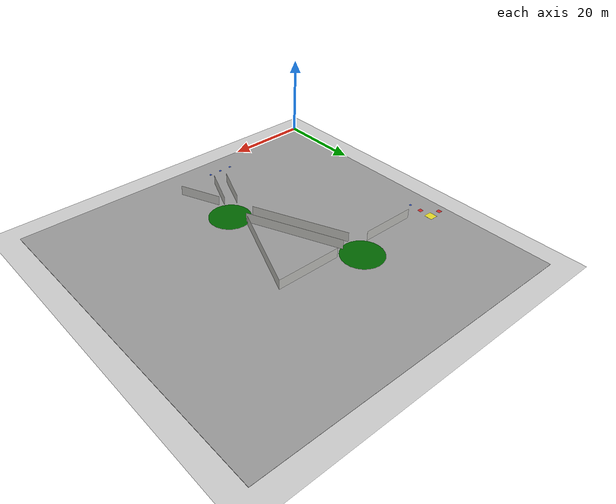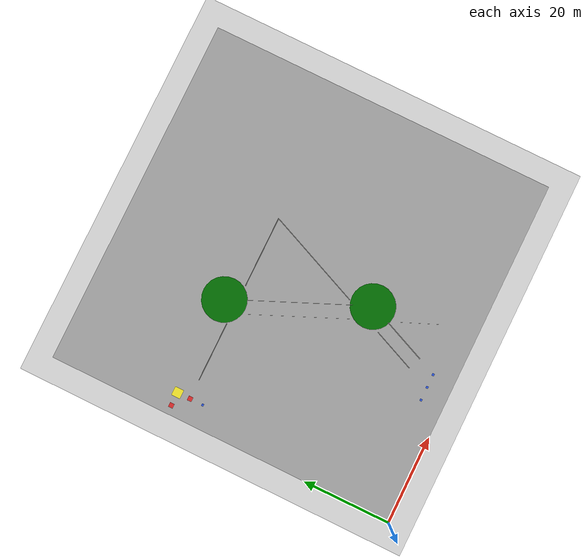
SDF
<sdf version="1.6">
 <world name="default">
  <model name="ground_plane">
   <static>1</static>
   <link name="link">
    <collision name="collision">
     <geometry><plane><normal>0 0 1</normal><size>100 100</size></plane></geometry>
     <surface><friction><ode><mu>100</mu><mu2>50</mu2></ode></friction></surface>
    </collision>
    <visual name="visual">
     <cast_shadows>0</cast_shadows>
     <geometry><plane><normal>0 0 1</normal><size>100 100</size></plane></geometry>
     <material>
      <script><uri>file://media/materials/scripts/gazebo.material</uri><name>Gazebo/Grey</name></script>
     </material>
    </visual>
   </link>
  </model>
  <model name="EMS_FLOOR_4">
   <pose>40 40 0 0 -0 0</pose>
   <link name="Wall_32">
    <collision name="Wall_32_Collision">
     <geometry><box><size>80.01 80 0.1</size></box></geometry>
     <pose>0 0 0.05 0 -0 0</pose>
    </collision>
    <visual name="Wall_32_Visual">
     <pose>0 0 0.05 0 -0 0</pose>
     <geometry><box><size>80.01 80 0.1</size></box></geometry>
     <material>
      <script><uri>file://media/materials/scripts/gazebo.material</uri><name>Gazebo/Grey</name></script>
      <ambient>1 1 1 1</ambient>
     </material>
    </visual>
    <pose>0 -1e-06 0 0 -0 1.5708</pose>
   </link>
   <static>1</static>
  </model>
  <model name="35_clone">
   <pose>40.9866 12.7073 0 0 -0 0</pose>
   <link name="Wall_2">
    <collision name="Wall_2_Collision">
     <geometry><box><size>10.2688 0.001 2.5</size></box></geometry>
     <pose>0 0 1.25 0 -0 0</pose>
    </collision>
    <visual name="Wall_2_Visual">
     <pose>0 0 1.25 0 -0 0</pose>
     <geometry><box><size>10.2688 0.001 2.5</size></box></geometry>
     <material>
      <script><uri>file://media/materials/scripts/gazebo.material</uri><name>Gazebo/CeilingTiled</name></script>
      <ambient>0.435294 0.796078 0.67451 1</ambient>
     </material>
    </visual>
    <pose>0 0 0 0 -0 1.9706</pose>
   </link>
   <static>1</static>
  </model>
  <model name="351_0">
   <pose>33.725 37.625 0 0 -0 0</pose>
   <link name="Wall_4">
    <collision name="Wall_4_Collision">
     <geometry><box><size>23.3941 0.001 2.5</size></box></geometry>
     <pose>0 0 1.25 0 -0 0</pose>
    </collision>
    <visual name="Wall_4_Visual">
     <pose>0 0 1.25 0 -0 0</pose>
     <geometry><box><size>23.3941 0.001 2.5</size></box></geometry>
     <material>
      <script><uri>file://media/materials/scripts/gazebo.material</uri><name>Gazebo/CeilingTiled</name></script>
      <ambient>0.435294 0.796078 0.67451 1</ambient>
     </material>
    </visual>
    <pose>1e-06 0 0 0 -0 1.9806</pose>
   </link>
   <static>1</static>
  </model>
  <model name="351_0_clone">
   <pose>30.9609 36.459 0 0 -0 0</pose>
   <link name="Wall_4">
    <collision name="Wall_4_Collision">
     <geometry><box><size>23.3941 0.001 2.5</size></box></geometry>
     <pose>0 0 1.25 0 -0 0</pose>
    </collision>
    <visual name="Wall_4_Visual">
     <pose>0 0 1.25 0 -0 0</pose>
     <geometry><box><size>23.3941 0.001 2.5</size></box></geometry>
     <material>
      <script><uri>file://media/materials/scripts/gazebo.material</uri><name>Gazebo/CeilingTiled</name></script>
      <ambient>0.435294 0.796078 0.67451 1</ambient>
     </material>
    </visual>
    <pose>1e-06 0 0 0 -0 1.9806</pose>
   </link>
   <static>1</static>
  </model>
  <model name="353_clone">
   <pose>16.225 49.5 0 0 -0 0</pose>
   <link name="Wall_10">
    <collision name="Wall_10_Collision">
     <geometry><box><size>13.45 0.001 2.5</size></box></geometry>
     <pose>0 0 1.25 0 -0 0</pose>
    </collision>
    <visual name="Wall_10_Visual">
     <pose>0 0 1.25 0 -0 0</pose>
     <geometry><box><size>13.45 0.001 2.5</size></box></geometry>
     <material>
      <script><uri>file://media/materials/scripts/gazebo.material</uri><name>Gazebo/CeilingTiled</name></script>
      <ambient>0.435294 0.796078 0.67451 1</ambient>
     </material>
    </visual>
    <pose>0 0 0 0 -0 3.14159</pose>
   </link>
   <static>1</static>
  </model>
  <model name="355">
   <pose>33.4866 15.0427 0 0 -0 0</pose>
   <link name="Wall_12">
    <collision name="Wall_12_Collision">
     <geometry><box><size>10.2688 0.001 2.5</size></box></geometry>
     <pose>0 0 1.25 0 -0 0</pose>
    </collision>
    <visual name="Wall_12_Visual">
     <pose>0 0 1.25 0 -0 0</pose>
     <geometry><box><size>10.2688 0.001 2.5</size></box></geometry>
     <material>
      <script><uri>file://media/materials/scripts/gazebo.material</uri><name>Gazebo/CeilingTiled</name></script>
      <ambient>0.435294 0.796078 0.67451 1</ambient>
     </material>
    </visual>
    <pose>0 0 0 0 -0 1.17099</pose>
   </link>
   <static>1</static>
  </model>
  <model name="355_clone">
   <pose>36.25 13.875 0 0 -0 0</pose>
   <link name="Wall_12">
    <collision name="Wall_12_Collision">
     <geometry><box><size>10.2688 0.001 2.5</size></box></geometry>
     <pose>0 0 1.25 0 -0 0</pose>
    </collision>
    <visual name="Wall_12_Visual">
     <pose>0 0 1.25 0 -0 0</pose>
     <geometry><box><size>10.2688 0.001 2.5</size></box></geometry>
     <material>
      <script><uri>file://media/materials/scripts/gazebo.material</uri><name>Gazebo/CeilingTiled</name></script>
      <ambient>0.435294 0.796078 0.67451 1</ambient>
     </material>
    </visual>
    <pose>0 0 0 0 -0 1.17099</pose>
   </link>
   <static>1</static>
  </model>
  <model name="356">
   <pose>43.5109 38.791 0 0 -0 0</pose>
   <link name="Wall_14">
    <collision name="Wall_14_Collision">
     <geometry><box><size>23.2878 0.001 2.5</size></box></geometry>
     <pose>0 0 1.25 0 -0 0</pose>
    </collision>
    <visual name="Wall_14_Visual">
     <pose>0 0 1.25 0 -0 0</pose>
     <geometry><box><size>23.2878 0.001 2.5</size></box></geometry>
     <material>
      <script><uri>file://media/materials/scripts/gazebo.material</uri><name>Gazebo/CeilingTiled</name></script>
      <ambient>0.435294 0.796078 0.67451 1</ambient>
     </material>
    </visual>
    <pose>0 0 0 0 -0 1.17162</pose>
   </link>
   <static>1</static>
  </model>
  <model name="359_clone_0">
   <pose>40 49.5 0 0 -0 0</pose>
   <link name="Wall_20">
    <collision name="Wall_20_Collision">
     <geometry><box><size>16.1 0.001 2.5</size></box></geometry>
     <pose>0 0 1.25 0 -0 0</pose>
    </collision>
    <visual name="Wall_20_Visual">
     <pose>0 0 1.25 0 -0 0</pose>
     <geometry><box><size>16.1 0.001 2.5</size></box></geometry>
     <material>
      <script><uri>file://media/materials/scripts/gazebo.material</uri><name>Gazebo/CeilingTiled</name></script>
      <ambient>0.435294 0.796078 0.67451 1</ambient>
     </material>
    </visual>
   </link>
   <static>1</static>
  </model>
  <model name="my_objectT3">
   <link name="my_box">
    <inertial>
     <mass>1</mass>
     <inertia><ixx>1</ixx><ixy>0</ixy><ixz>0</ixz><iyy>100</iyy><iyz>0</iyz><izz>1</izz></inertia>
    </inertial>
    <collision name="my_box_collision"><geometry><box><size>2 2 0.01</size></box></geometry></collision>
    <visual name="my_box_visual">
     <geometry><box><size>2 2 0.01</size></box></geometry>
     <material>
      <script><name>Gazebo/Yellow</name><uri>file://media/materials/scripts/gazebo.material</uri></script>
     </material>
    </visual>
   </link>
   <pose>5.00041 52.4991 0.114999 1e-06 1.4e-05 -0.000493</pose>
  </model>
  <model name="my_objecteg1w1">
   <link name="my_box">
    <inertial>
     <mass>1</mass>
     <inertia><ixx>1</ixx><ixy>0</ixy><ixz>0</ixz><iyy>100</iyy><iyz>0</iyz><izz>1</izz></inertia>
    </inertial>
    <collision name="my_box_collision"><geometry><box><size>1 1 0.01</size></box></geometry></collision>
    <visual name="my_box_visual">
     <geometry><box><size>1 1 0.01</size></box></geometry>
     <material>
      <script><name>Gazebo/Red</name><uri>file://media/materials/scripts/gazebo.material</uri></script>
     </material>
    </visual>
   </link>
   <pose>2 52.5 0.104995 0 -0 0</pose>
  </model>
  <model name="my_objecteg1w3">
   <link name="my_box">
    <inertial>
     <mass>1</mass>
     <inertia><ixx>1</ixx><ixy>0</ixy><ixz>0</ixz><iyy>100</iyy><iyz>0</iyz><izz>1</izz></inertia>
    </inertial>
    <collision name="my_box_collision"><geometry><box><size>1 1 0.01</size></box></geometry></collision>
    <visual name="my_box_visual">
     <geometry><box><size>1 1 0.01</size></box></geometry>
     <material>
      <script><name>Gazebo/Red</name><uri>file://media/materials/scripts/gazebo.material</uri></script>
     </material>
    </visual>
   </link>
   <pose>5.00042 49.499 0.114991 -2e-06 2e-06 0.001101</pose>
  </model>
  <model name="my_objectg2w1">
   <link name="my_box">
    <inertial>
     <mass>1</mass>
     <inertia><ixx>1</ixx><ixy>0</ixy><ixz>0</ixz><iyy>100</iyy><iyz>0</iyz><izz>1</izz></inertia>
    </inertial>
    <collision name="my_box_collision"><geometry><box><size>0.5 0.5 0.01</size></box></geometry></collision>
    <visual name="my_box_visual">
     <geometry><box><size>0.5 0.5 0.01</size></box></geometry>
     <material>
      <script><name>Gazebo/Blue</name><uri>file://media/materials/scripts/gazebo.material</uri></script>
     </material>
    </visual>
   </link>
   <pose>32.4975 5.00493 0.104991 2e-06 1e-06 -0.000194</pose>
  </model>
  <model name="my_objectg2w2">
   <link name="my_box">
    <inertial>
     <mass>1</mass>
     <inertia><ixx>1</ixx><ixy>0</ixy><ixz>0</ixz><iyy>100</iyy><iyz>0</iyz><izz>1</izz></inertia>
    </inertial>
    <collision name="my_box_collision"><geometry><box><size>0.5 0.5 0.01</size></box></geometry></collision>
    <visual name="my_box_visual">
     <geometry><box><size>0.5 0.5 0.01</size></box></geometry>
     <material>
      <script><name>Gazebo/Blue</name><uri>file://media/materials/scripts/gazebo.material</uri></script>
     </material>
    </visual>
   </link>
   <pose>29.4969 5.00491 0.104991 2e-06 1e-06 -0.000563</pose>
  </model>
  <model name="my_objectg2w3">
   <link name="my_box">
    <inertial>
     <mass>1</mass>
     <inertia><ixx>1</ixx><ixy>0</ixy><ixz>0</ixz><iyy>100</iyy><iyz>0</iyz><izz>1</izz></inertia>
    </inertial>
    <collision name="my_box_collision"><geometry><box><size>0.5 0.5 0.01</size></box></geometry></collision>
    <visual name="my_box_visual">
     <geometry><box><size>0.5 0.5 0.01</size></box></geometry>
     <material>
      <script><name>Gazebo/Blue</name><uri>file://media/materials/scripts/gazebo.material</uri></script>
     </material>
    </visual>
   </link>
   <pose>26.4964 5.00585 0.104971 0 1e-06 -0.001231</pose>
  </model>
  <model name="my_objectg4w2">
   <link name="my_box">
    <inertial>
     <mass>1</mass>
     <inertia><ixx>1</ixx><ixy>0</ixy><ixz>0</ixz><iyy>100</iyy><iyz>0</iyz><izz>1</izz></inertia>
    </inertial>
    <collision name="my_box_collision"><geometry><box><size>0.5 0.5 0.01</size></box></geometry></collision>
    <visual name="my_box_visual">
     <geometry><box><size>0.5 0.5 0.01</size></box></geometry>
     <material>
      <script><name>Gazebo/Blue</name><uri>file://media/materials/scripts/gazebo.material</uri></script>
     </material>
    </visual>
   </link>
   <pose>4.99364 49.5096 0.104991 -2e-06 1e-06 -3e-06</pose>
  </model>
  <model name="my_objectg4w3">
   <link name="my_box">
    <inertial>
     <mass>1</mass>
     <inertia><ixx>1</ixx><ixy>0</ixy><ixz>0</ixz><iyy>100</iyy><iyz>0</iyz><izz>1</izz></inertia>
    </inertial>
    <collision name="my_box_collision"><geometry><box><size>0.5 0.5 0.01</size></box></geometry></collision>
    <visual name="my_box_visual">
     <geometry><box><size>0.5 0.5 0.01</size></box></geometry>
     <material>
      <script><name>Gazebo/Blue</name><uri>file://media/materials/scripts/gazebo.material</uri></script>
     </material>
    </visual>
   </link>
   <pose>4.99406 46.5091 0.105001 2e-06 1e-06 -0.000767</pose>
  </model>
  <model name="unit_cylinder_0_3">
   <link name="link">
    <inertial>
     <mass>1</mass>
     <inertia><ixx>0.145833</ixx><ixy>0</ixy><ixz>0</ixz><iyy>0.145833</iyy><iyz>0</iyz><izz>0.125</izz></inertia>
    </inertial>
    <gravity>0</gravity>
    <visual name="visual">
     <geometry><cylinder><radius>5</radius><length>0.01</length></cylinder></geometry>
     <material>
      <script><name>Gazebo/Grey</name><uri>file://media/materials/scripts/gazebo.material</uri></script>
      <ambient>0 0.4 0 0</ambient>
      <diffuse>0 0.4 0 0</diffuse>
      <specular>0 0.41 0 0</specular>
      <emissive>0 0.4 0 0</emissive>
      <shader type="vertex"><normal_map>__default__</normal_map></shader>
     </material>
    </visual>
   </link>
   <static>0</static>
   <pose>39.9922 22.9648 0.1 0 -0 0</pose>
  </model>
  <model name="unit_cylinder_0_3_clone_clone">
   <link name="link">
    <inertial>
     <mass>1</mass>
     <inertia><ixx>0.145833</ixx><ixy>0</ixy><ixz>0</ixz><iyy>0.145833</iyy><iyz>0</iyz><izz>0.125</izz></inertia>
    </inertial>
    <gravity>0</gravity>
    <visual name="visual">
     <geometry><cylinder><radius>5</radius><length>0.01</length></cylinder></geometry>
     <material>
      <script><name>Gazebo/Grey</name><uri>file://media/materials/scripts/gazebo.material</uri></script>
      <ambient>0 0.4 0 0</ambient>
      <diffuse>0 0.4 0 0</diffuse>
      <specular>0 0.41 0 0</specular>
      <emissive>0 0.4 0 0</emissive>
      <shader type="vertex"><normal_map>__default__</normal_map></shader>
     </material>
    </visual>
   </link>
   <static>0</static>
   <pose>27.2881 52.3623 0.1 0 -0 0</pose>
  </model>
 </world>
</sdf>
